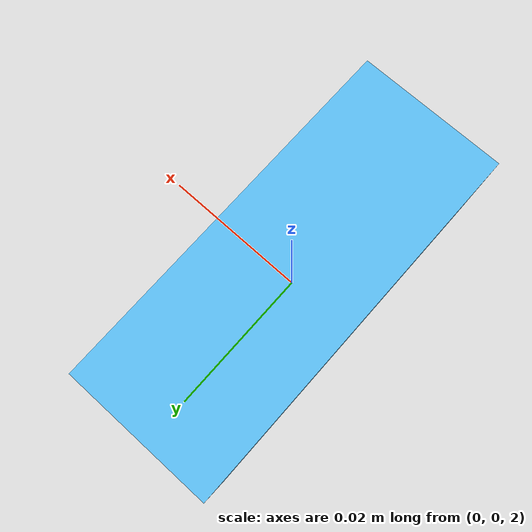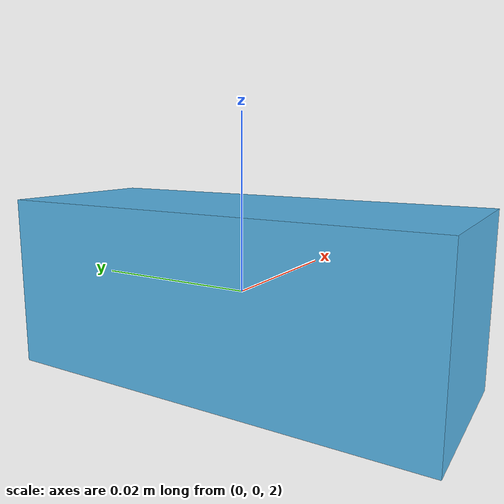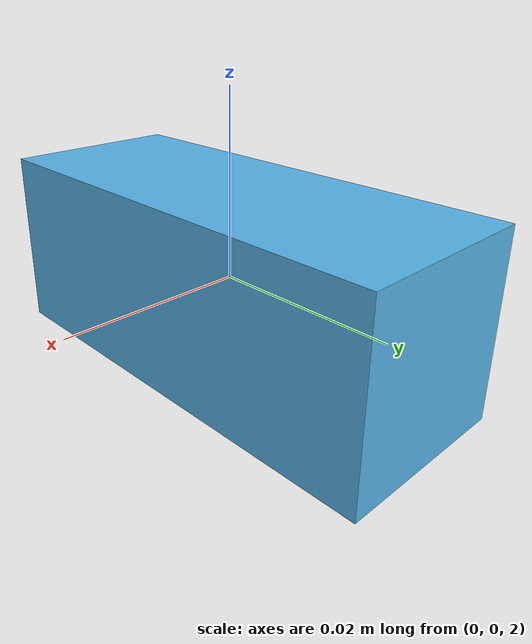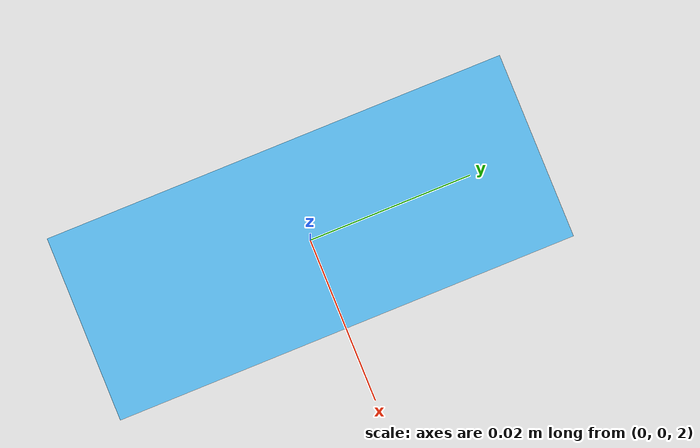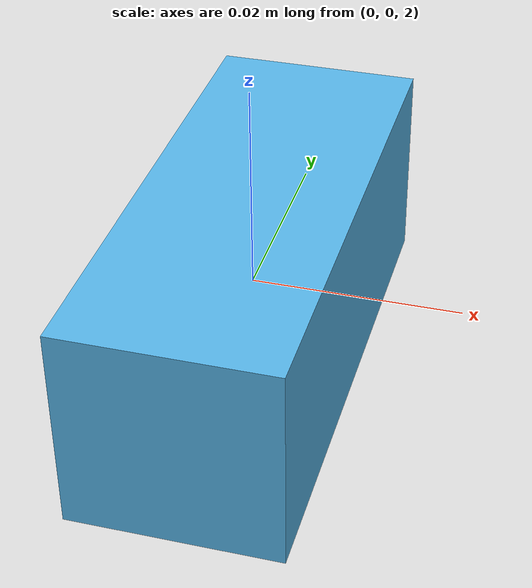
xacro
<?xml version="1.0"?>
<robot xmlns:xacro="http://ros.org/wiki/xacro" name="rvss_sim">
    <xacro:property name="camera_pose_x" value="0" />
	<xacro:property name="camera_pose_y" value="0" />
	<xacro:property name="camera_pose_z" value="2" />
	<xacro:property name="camera_roll" value="0" />
	<xacro:property name="camera_pitch" value="0" />
	<xacro:property name="camera_yaw" value="0" />
	<xacro:property name="pi" value="3.1415926535897931"/>

	<xacro:include filename="$(find data_collector)/models/pibot_cam.gazebo.xacro" />

	<!-- ##################################
		 			Camera Setup
	################################## -->

	<link name="world"/>
	<joint name="camera_joint" type="fixed">
		<axis xyz="1 0 0" />
		<origin xyz="${camera_pose_x} ${camera_pose_y} ${camera_pose_z}" rpy="${camera_roll} ${camera_pitch} ${camera_yaw}"/>
		<parent link="world"/>
		<child link="pibot_cam_link"/>
	</joint>

	<link name="pibot_cam_link">
		<visual>
			<origin xyz="0 0 0" rpy="0 0 0"/>
			<geometry>
				<box size="0.02 0.05 0.02"/>
			</geometry>
		</visual>
		<inertial>
			<mass value="1" />
			<origin xyz="0 0 0" rpy="0 0 0"/>
      		<inertia ixx="1.0" ixy="0.0" ixz="0.0" iyy="1.0" iyz="0.0" izz="1.0" />
		</inertial>
	</link>
</robot>
